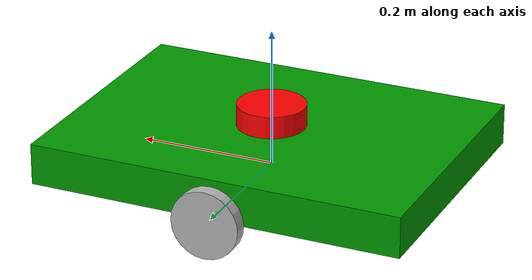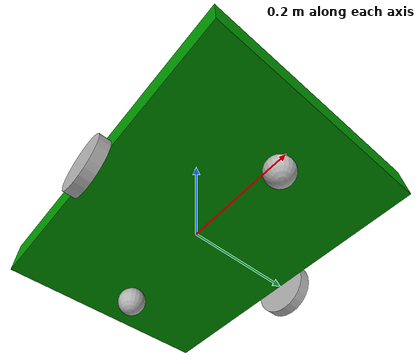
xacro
<?xml version="1.0"?>
<robot name="my_robot" xmlns:xacro="http://www.ros.org/wiki/xacro">
  <xacro:include filename="$(find bot_description)/urdf/common_properties.xacro"/>
  <xacro:include filename="$(find bot_description)/urdf/mobile_robot.xacro"/>
  <xacro:include filename="$(find bot_description)/urdf/mobile_base_gazebo.xacro"/>
  <xacro:include filename="$(find bot_description)/urdf/lidar.xacro"/>

</robot>

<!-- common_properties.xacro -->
<robot xmlns:xacro="http://www.ros.org/wiki/xacro">
  <material name="green">
    <color rgba="0 0.6 0 1" />
  </material>
  <material name="gray">
    <color rgba="0.7 0.7 0.7 1" />
  </material>
  <xacro:macro name="box_inertia" params="m x y z o_xyz o_rpy">
    <inertial>
      <mass value="${m}" />
      <origin xyz="${o_xyz}" rpy="${o_rpy}" />
      <inertia ixx="${(m/12) * (z*z + y*y)}" ixy="0" ixz="0"
               iyy="${(m/12) * (x*x + z*z)}" iyz="0"
               izz="${(m/12) * (x*x + y*y)}" />
    </inertial>
  </xacro:macro>
  <xacro:macro name="cylinder_inertia" params="m r l o_xyz o_rpy">
    <inertial>
      <mass value="${m}" />
      <origin xyz="${o_xyz}" rpy="${o_rpy}" />
      <inertia ixx="${(m/12) * (3*r*r + l*l)}" ixy="0" ixz="0"
               iyy="${(m/12) * (3*r*r + l*l)}" iyz="0"
               izz="${(m/2) * (r*r)}" />
    </inertial>
  </xacro:macro>
  <xacro:macro name="sphere_inertia" params="m r o_xyz o_rpy">
    <inertial>
      <mass value="${m}" />
      <origin xyz="${o_xyz}" rpy="${o_rpy}" />
      <inertia ixx="${(2/5) * m * r * r}" ixy="0" ixz="0"
               iyy="${(2/5) * m * r * r}" iyz="0"
               izz="${(2/5) * m * r * r}" />
    </inertial>
  </xacro:macro>
  <material name="red">
    <color rgba="1 0 0 1"/>
  </material>
</robot>

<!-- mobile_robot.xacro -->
<robot xmlns:xacro="http://www.ros.org/wiki/xacro">
  <xacro:property name="base_length" value="0.55" />
  <xacro:property name="base_width" value="0.4" />
  <xacro:property name="base_height" value="0.06" />
  <xacro:property name="wheel_radius" value="0.05" />
  <xacro:property name="wheel_length" value="0.02" />
  <xacro:macro name="wheel_link" params="prefix">
    <link name="${prefix}_wheel_link">
       <visual>
        <geometry>
          <cylinder radius="${wheel_radius}" length="${wheel_length}" />
        </geometry>
        <origin xyz="0 0 0" rpy="${pi / 2.0} 0 0" /><material name="gray" />
      </visual>
      <collision>
        <geometry>
          <sphere radius="${wheel_radius}"/>
        </geometry>
        <origin xyz="0 0 0" rpy="0 0 0" /><material name="gray" />
      </collision>
      <xacro:cylinder_inertia m="1.0" r="${wheel_radius}" l="${wheel_length}"
        o_xyz="0 0 0" o_rpy="${pi / 2.0} 0 0" />
    </link>
  </xacro:macro>
  <link name="base_link">
    <visual>
      <geometry>
        <box size="${base_length} ${base_width} ${base_height}" />
      </geometry>
      <origin xyz="0 0 ${base_height / 2.0}" rpy="0 0 0" />
      <material name="green" />
    </visual>
    <collision>
      <geometry>
        <box size="${base_length} ${base_width} ${base_height}" />
      </geometry>
      <origin xyz="0 0 ${base_height / 2.0}" rpy="0 0 0" />
    </collision>
    <xacro:box_inertia m="5.0" x="${base_length}" y="${base_width}" z="${base_height}"
      o_xyz="0 0 ${base_height / 2.0}" o_rpy="0 0 0" />
  </link>
  <xacro:wheel_link prefix="right" />
  <joint name="base_right_wheel_joint" type="continuous">
    <parent link="base_link" />
    <child link="right_wheel_link" />
    <origin xyz="0 ${-(base_width + wheel_length) / 2.0} 0" rpy="0 0 0" />
    <axis xyz="0 1 0" rpy="0 0 0"/>
  </joint>
  <xacro:wheel_link prefix="left" />
  <joint name="base_left_wheel_joint" type="continuous">
    <parent link="base_link" />
    <child link="left_wheel_link" />
    <origin xyz="0 ${(base_width + wheel_length) / 2.0} 0.0" rpy="0 0 0" />
    <axis xyz="0 -1 0" rpy="0 0 0"/>
  </joint>
  <link name="caster_wheel_link_front">
    <visual>
      <geometry>
        <sphere radius="${wheel_radius / 2.0}" />
      </geometry>
      <origin xyz="0 0 0" rpy="0 0 0" />
      <material name="gray" />
    </visual>
    <collision>
      <geometry>
        <sphere radius="${wheel_radius / 2.0}" />
      </geometry>
      <origin xyz="0 0 0" rpy="0 0 0" />
    </collision>
    <xacro:sphere_inertia m="0.5" r="${wheel_radius / 2.0}" o_xyz="0 0 0" o_rpy="0 0 0" />
  </link>
  <joint name="base_caster_wheel_joint" type="fixed">
    <parent link="base_link" />
    <child link="caster_wheel_link_front" />
    <origin xyz="${base_length / 3.0} 0 ${-wheel_radius / 2.0}" rpy="0 0 0" />
  </joint>

  <link name="caster_wheel_link_back">
    <visual>
      <geometry>
        <sphere radius="${wheel_radius / 2.0}" />
      </geometry>
      <origin xyz="0 0 0" rpy="0 0 0" />
      <material name="gray" />
    </visual>
    <collision>
      <geometry>
        <sphere radius="${wheel_radius / 2.0}" />
      </geometry>
      <origin xyz="0 0 0" rpy="0 0 0" />
    </collision>
    <xacro:sphere_inertia m="0.5" r="${wheel_radius / 2.0}" o_xyz="0 0 0" o_rpy="0 0 0" />
  </link>
  <joint name="base_caster_wheel_joint2" type="fixed">
    <parent link="base_link" />
    <child link="caster_wheel_link_back" />
    <origin xyz="${-base_length / 3.0} 0 ${-wheel_radius / 2.0}" rpy="0 0 0" />
  </joint>

  <link name="base_footprint">
  </link>

  <joint name="base_joint" type="fixed">
    <parent link="base_link" />
    <child link="base_footprint" />
    <origin xyz="0 0 0" rpy="0 0 0" />
  </joint>

</robot>

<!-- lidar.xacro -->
<robot xmlns:xacro="http://www.ros.org/wiki/xacro" >

    <link name="laser">
        <visual>
            <geometry>
                <cylinder radius="0.05" length="0.04"/>
            </geometry>
            <material name="red"/>
        </visual>
        <collision>
            <geometry>
                <cylinder radius="0.05" length="0.04"/>
            </geometry>
        </collision>
        <xacro:cylinder_inertia m=".1" r="${wheel_radius}" l="${wheel_length}"
        o_xyz="0 0 0" o_rpy="${pi / 2.0} 0 0" />
    </link>

    <joint name="laser_joint" type="fixed">
        <parent link="base_link"/>
        <child link="laser"/>
        <origin xyz="0 0 ${base_height+0.0125}" rpy="0 0 0"/>
        <axis xyz="0 0 1"/>
    </joint>

    <gazebo reference="laser">
        <material name="white">
            <color rgba="1.0 1.0 1.0 1.0"/>
        </material>

    </gazebo>

</robot>
